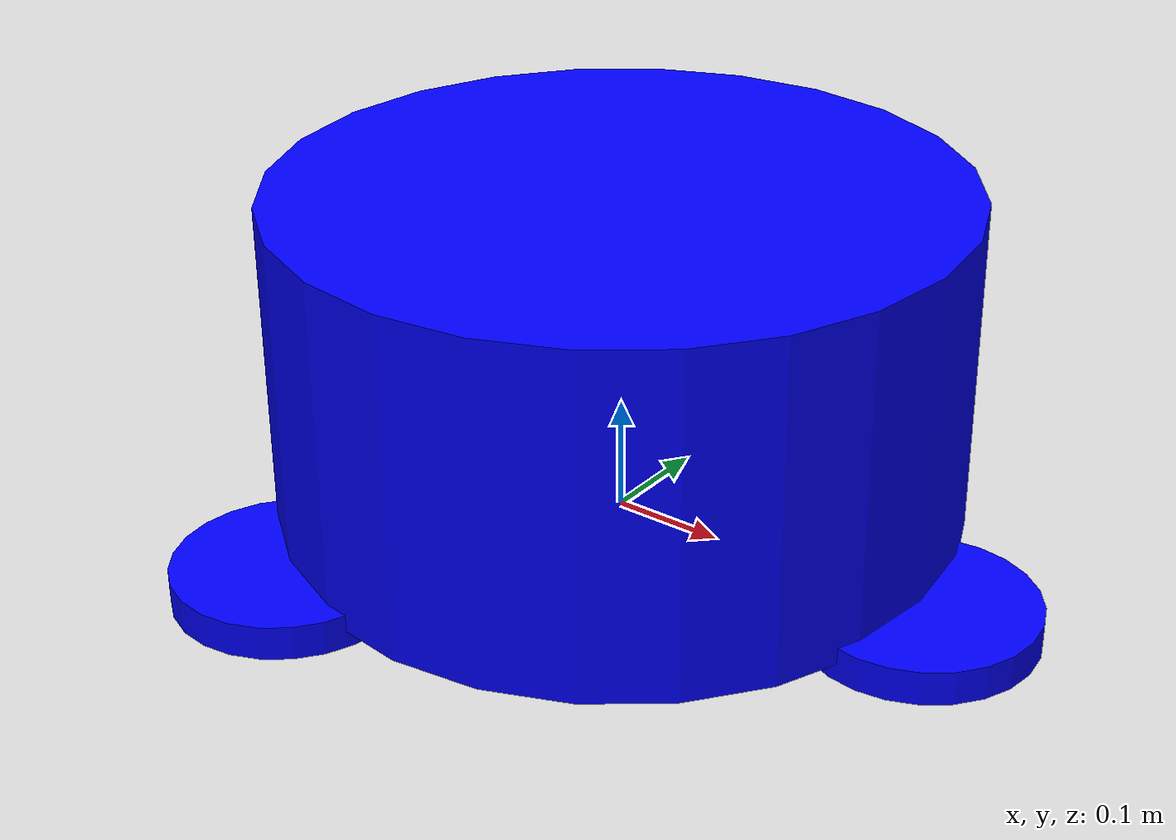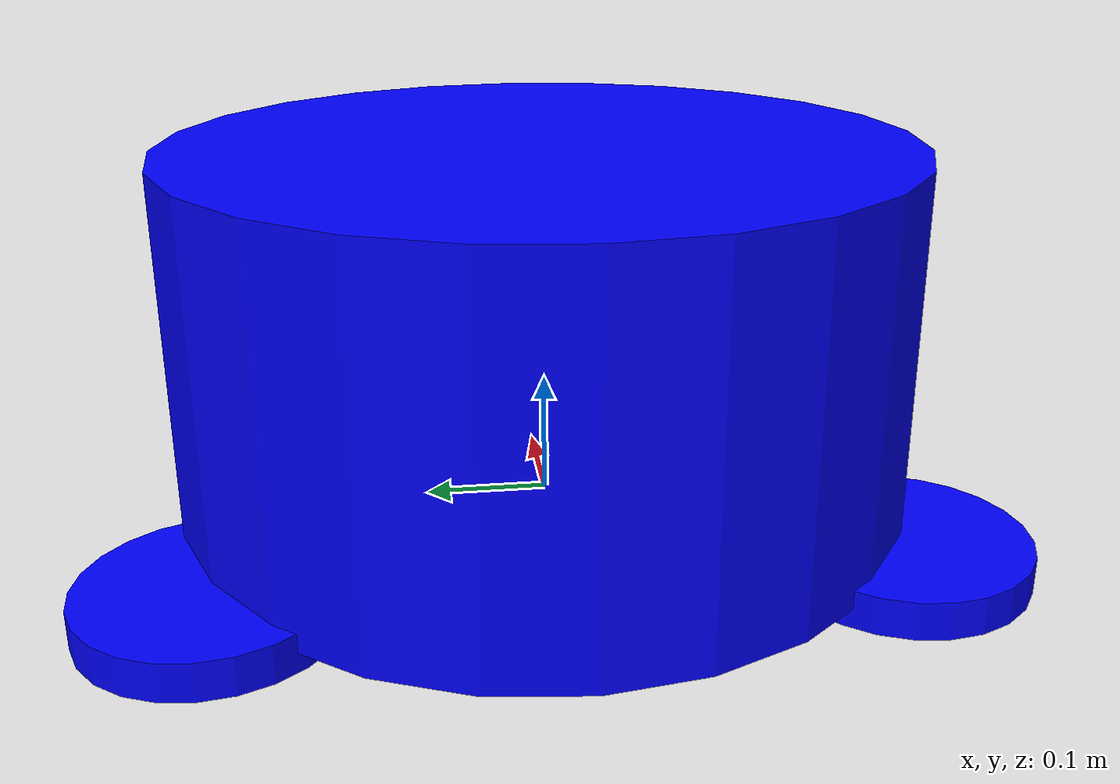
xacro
<?xml version="1.0"?>
<robot xmlns:xacro="http://ros.org/wiki/xacro" name="car">
    <xacro:include filename="base.urdf.xacro"/>
    <xacro:include filename="wheel/wheel.urdf.xacro"/>

    <xacro:base_xacro length="0.3" radius="0.3"/>
    <xacro:wheel wheel_name="wheel_1" xyz="0.3 0.0 -0.15" axis_xyz="1.0 0.0 0.0" rpy="0.0 1.57079 0.0"/>
    <xacro:wheel wheel_name="wheel_2" xyz="-0.15 0.25980 -0.15" axis_xyz="0.5 -0.86603 0.0" rpy="0.0 1.57079 2.09440"/>
    <xacro:wheel wheel_name="wheel_3" xyz="-0.15 -0.25980 -0.15" axis_xyz="0.5 0.86603 0.0" rpy="0.0 1.57079 1.04720"/>
</robot>

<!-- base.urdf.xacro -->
<robot xmlns:xacro="http://ros.org/wiki/xacro">
    <xacro:include filename="yuan.urdf.xacro"/>

    <xacro:macro name="base_xacro" params="length radius">
        <link name="base_footprint"/>

        <link name="base_link">
            <xacro:cylinder_visual r="${radius}" h="${length}"/>
            <xacro:cylinder_collision r="${radius}" h="${length}"/>
            <xacro:cylinder_inertia m="1.0" r="${radius}" h="${length}"/>
        </link>

        <joint name="joint_first" type="fixed">
            <origin xyz="0.0 0.0 ${length/2.0}" rpy="0.0 0.0 0.0"/>
            <parent link="base_footprint"/>
            <child link="base_link"/>
        </joint>
    </xacro:macro>
</robot>

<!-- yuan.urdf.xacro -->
<robot xmlns:xacro="http://ros.org/wiki/xacro">
    <!-- 视觉 -->
    <!-- 方形 -->
    <xacro:macro name="box_visual" params="x y z">
        <visual>
            <origin xyz="0.0 0.0 0.0" rpy="0.0 0.0 0.0"/>
            <geometry>
                <box size="${x} ${y} ${z}"/>
            </geometry>
            <material name="white">
                <color rgba="1.0 1.0 1.0 0.5"/>
            </material>
        </visual>
    </xacro:macro>
    <!-- 圆柱 -->
    <xacro:macro name="cylinder_visual" params="r h">
        <visual>
            <origin xyz="0.0 0.0 0.0" rpy="0.0 0.0 0.0"/>
            <geometry>
                <cylinder radius="${r}" length="${h}"/>
            </geometry>
            <material name="blue">
                <color rgba="0.0 0.0 1.0 1.0"/>
            </material>
        </visual>
    </xacro:macro>
    <xacro:macro name="sphere_visual" params="r">
        <visual>
            <origin xyz="0.0 0.0 0.0" rpy="0.0 0.0 0.0"/>
            <geometry>
                <sphere radius="${r}"/>
            </geometry>
            <material name="white">
                <color rgba="1.0 1.0 1.0 0.5"/>
            </material>
        </visual>
    </xacro:macro>

    <!-- 碰撞 -->
    <!-- 方形 -->
    <xacro:macro name="box_collision" params="x y z">
        <collision>
            <origin xyz="0.0 0.0 0.0" rpy="0.0 0.0 0.0"/>
            <geometry>
                <box size="${x} ${y} ${z}"/>
            </geometry>
        </collision>
    </xacro:macro>
    <!-- 圆柱 -->
    <xacro:macro name="cylinder_collision" params="r h">
        <collision>
            <origin xyz="0.0 0.0 0.0" rpy="0.0 0.0 0.0"/>
            <geometry>
                <cylinder radius="${r}" length="${h}"/>
            </geometry>
        </collision>
    </xacro:macro>
    <xacro:macro name="sphere_collision" params="r">
        <collision>
            <origin xyz="0.0 0.0 0.0" rpy="0.0 0.0 0.0"/>
            <geometry>
                <sphere radius="${r}"/>
            </geometry>
        </collision>
    </xacro:macro>

    <!-- 惯性 -->
    <!-- 方形 -->
    <xacro:macro name="box_inertia" params="m x y z">
        <inertial>
            <origin xyz="0.0 0.0 0.0" rpy="0.0 0.0 0.0"/>
            <mass value="${m}" />
            <inertia ixx="${(m/12) * (y*y + z*z)}" ixy="0.0" ixz="0.0" iyy="${(m/12) * (x*x + z*z)}" iyz="0.0" izz="${(m/12) * (x*x + y*y)}" />
        </inertial>
    </xacro:macro>
    <!-- 圆柱 -->
    <xacro:macro name="cylinder_inertia" params="m r h">
        <inertial>
            <origin xyz="0.0 0.0 0.0" rpy="0.0 0.0 0.0"/>
            <mass value="${m}" />
            <inertia ixx="${(m/12) * (3*r*r + h*h)}" ixy="0" ixz="0" iyy="${(m/12) * (3*r*r + h*h)}" iyz="0" izz="${(m/2) * (r*r)}" />
        </inertial>
    </xacro:macro>
    <xacro:macro name="sphere_inertia" params="m r">
        <inertial>
            <origin xyz="0.0 0.0 0.0" rpy="0.0 0.0 0.0"/>
            <mass value="${m}" />
            <inertia ixx="${(2/5) * m * (r*r)}" ixy="0.0" ixz="0.0" iyy="${(2/5) * m * (r*r)}" iyz="0.0" izz="${(2/5) * m * (r*r)}" />
        </inertial>
    </xacro:macro>

</robot>

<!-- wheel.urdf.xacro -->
<robot xmlns:xacro="http://ros.org/wiki/xacro">
    <xacro:include filename="../yuan.urdf.xacro"/>

    <xacro:macro name="wheel" params="wheel_name xyz axis_xyz rpy:='0 0.0 0.0'">
        <link name="${wheel_name}_link">
            <xacro:cylinder_visual r="0.1" h="0.03" rpy="${rpy}"/>
            <xacro:cylinder_collision r="0.1" h="0.03" rpy="${rpy}"/>
        </link>

        <joint name="${wheel_name}_joint" type="continuous">
            <parent link="base_link"/>
            <child link="${wheel_name}_link"/>
            <origin xyz="${xyz}" rpy="0.0 0.0 0.0"/>
            <axis xyz="${axis_xyz}"/>
        </joint>
    </xacro:macro>
</robot>
